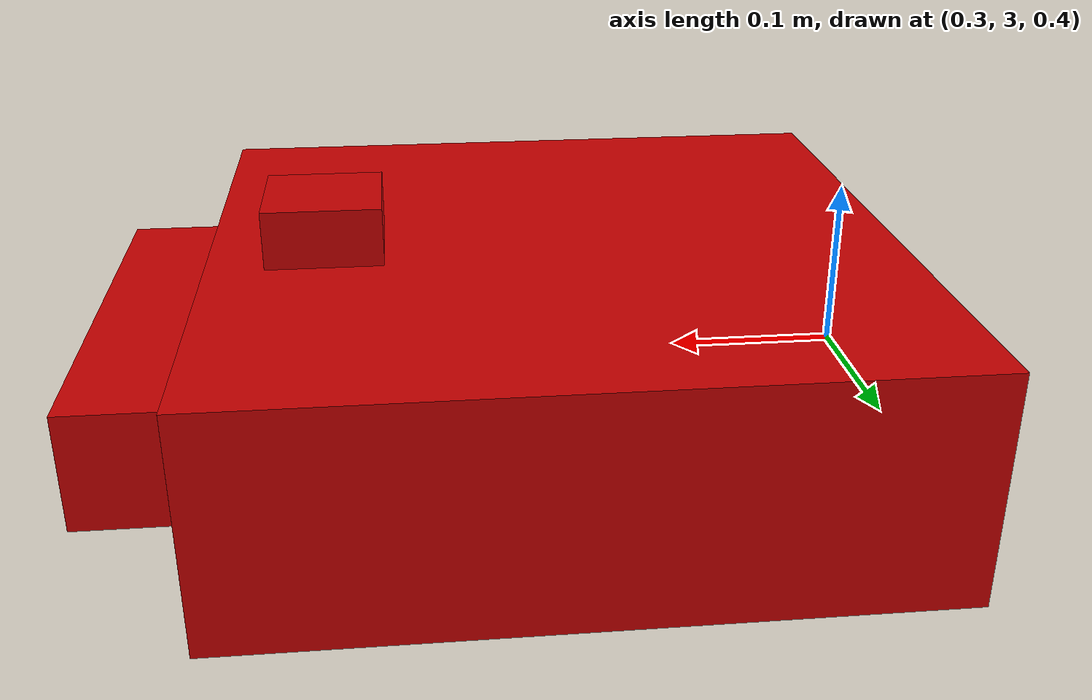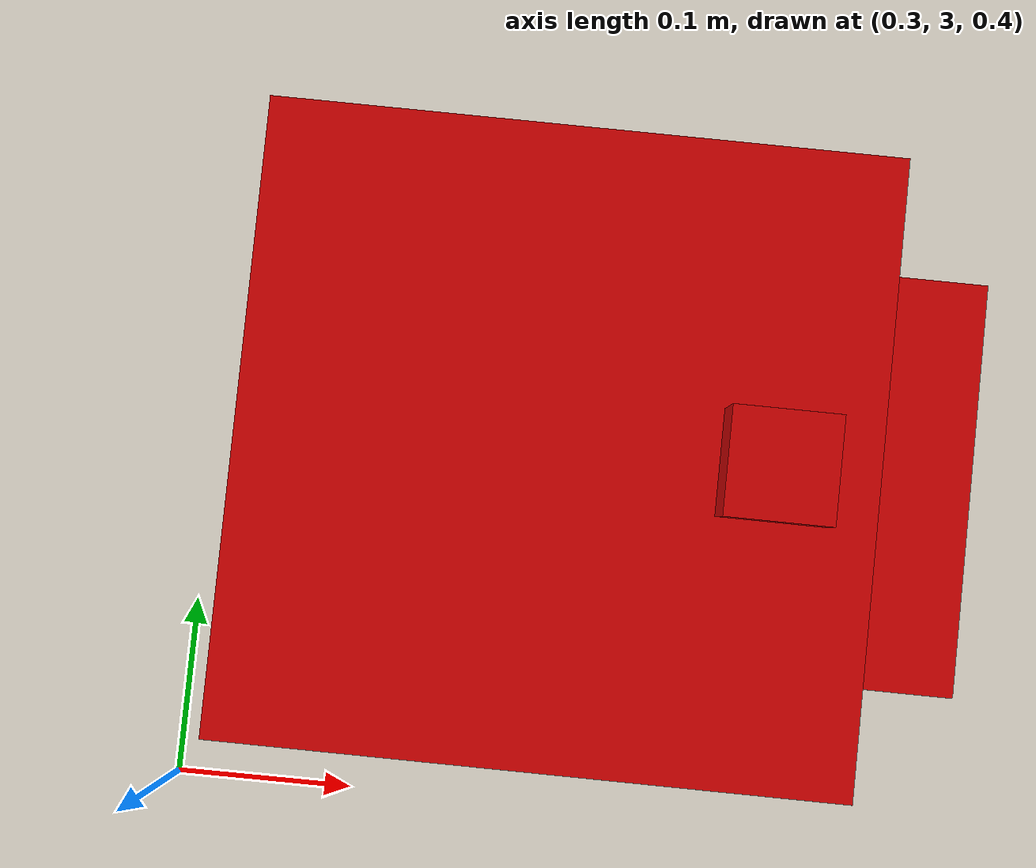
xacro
<?xml version="1.0"?>
<robot name="ros_project" xmlns:xacro="http://www.ros.org/wiki/xacro">
  <xacro:include filename="$(find ros_project_description)/urdf/ros_project.materials.xacro"/>
  <xacro:include filename="$(find ros_project_description)/urdf/ros_project.parameters.xacro"/>
  <xacro:include filename="$(find ros_project_description)/urdf/ros_project.macros.xacro"/>
  <xacro:include filename="$(find ros_project_description)/urdf/ros_project.camera.xacro"/>
  <xacro:include filename="$(find ros_project_description)/urdf/ros_project.control.xacro"/>
  <link name="the_world"/>

  <xacro:create_chassis chassis_id = "main" parent_name = "the_world" radius="$(arg chassis_radius)" xyz="0.5 3.2 0.5"/>
  <xacro:create_chassis_head parent_name = "chassis_main" radius="$(arg chassis_radius)" xyz="0.1 0 0"/>

  <xacro:create_wheel wheel_id = "left" parent_name = "chassis_main" radius="$(arg wheel_radius)" xyz="0 0.15 -0.041"/>
  <xacro:create_wheel wheel_id = "right" parent_name = "chassis_main" radius="$(arg wheel_radius)" xyz="0 -0.15 -0.041"/>

  <xacro:create_nub nub_id = "back" parent_name = "chassis_main" radius="$(arg nub_radius)" xyz="-0.15 0 -0.04"/>
  <xacro:create_nub nub_id = "front" parent_name = "chassis_main" radius="$(arg nub_radius)" xyz="0.15 0 -0.04"/>

  <link name="camera_link">
    <collision>
      <geometry>
        <box size="0.05 0.05 0.05"/>
      </geometry>
    </collision>

    <visual>
      <geometry>
        <box size="0.05 0.05 0.05"/>
      </geometry>
      <material name="red"/>
    </visual>

    <inertial>
      <mass value="1e-5" />
      <inertia ixx="1e-6" ixy="0" ixz="0" iyy="1e-6" iyz="0" izz="1e-6" />
    </inertial>
  </link>

   <joint name="camera_joint" type="fixed">
    <axis xyz="0 0 0" />
    <origin xyz="0 0 0.05" rpy="0 0 0"/>
    <parent link="chassis_head"/>
    <child link="camera_link"/>
  </joint>

</robot>

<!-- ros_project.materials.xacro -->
<robot name="ros_project" xmlns:xacro="http://www.ros.org/wiki/xacro">
  <material name="red">
    <color rgba="0.8 0 0 1"/>
  </material>

  <material name="black">
    <color rgba="0 0 0 1"/>
  </material>

  <material name="green">
    <color rgba="0 1 0 1"/>
  </material>

  <material name="transparent_black">
    <color rgba="0 0 0 0.5"/>
  </material>
</robot>

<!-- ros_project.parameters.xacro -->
<robot name="ros_project" xmlns:xacro="http://www.ros.org/wiki/xacro">
  <xacro:arg name="chassis_radius" default="0"/>
  <xacro:arg name="chassis_height" default="0"/>
  <xacro:arg name="wheel_radius" default="0"/>
  <xacro:arg name="nub_radius" default="0"/>
  <xacro:arg name="world_offset" default="1"/>

  <xacro:property name="chassis_density" value="500"/>
  <xacro:property name="chassis_radius" value="$(arg chassis_radius)"/>
  <xacro:property name="chassis_height" value="$(arg chassis_height)"/>
  <xacro:property name="wheel_radius" value="$(arg wheel_radius)"/>
  <xacro:property name="nub_radius" value="$(arg nub_radius)"/>
  <xacro:property name="chassis_mass" value="${chassis_density * pi * chassis_radius**2 * chassis_height}"/>
</robot>

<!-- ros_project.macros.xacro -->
<robot xmlns:xacro="http://www.ros.org/wiki/xacro" name="ros_project">
   <xacro:macro name="cylinder_inertia" params="mass radius length">
      <inertial>
         <mass value="${mass}"/>
         <inertia
         ixx="${(1/12)*mass*(3*radius**2 + length**2)}"
         ixy="0.0"
         ixz="0.0"
         iyy="${(1/12)*mass*(3*radius**2 + length**2)}"
         iyz="0.0"
         izz="${(1/12)*mass*radius**2}" />
      </inertial>
   </xacro:macro>

      <xacro:macro name="sphere_inertia" params="mass radius">
      <inertial>
         <mass value="${mass}"/>
         <inertia ixx="${(2/5)*mass*radius*radius}"
         ixy="0.0"
         ixz="0.0"
         iyy="${(2/5)*mass*radius*radius}"
         iyz="0.0"
         izz="${(2/5)*mass*radius*radius}"/>
      </inertial>
   </xacro:macro>
   <xacro:macro name="create_wheel" params="radius parent_name wheel_id xyz">
      <link name="wheel_${wheel_id}">
         <visual>
            <geometry>
               <cylinder length="0.05" radius="${radius}" />
            </geometry>
            <material name="black" />
         </visual>
         <collision>
            <geometry>
               <cylinder length="0.05" radius="${radius}" />
            </geometry>
         </collision>
      <inertial>
         <mass value="1" />
         <inertia ixx="1.0" ixy="0.0" ixz="0.0" iyy="1.0" iyz="0.0" izz="0.0" />
      </inertial>
      </link>
      <joint name="base_to_wheel_${wheel_id}" type="continuous">
         <parent link="${parent_name}" />
         <child link="wheel_${wheel_id}" />
         <origin rpy="1.57075 0 0" xyz="${xyz}" />
         <axis xyz="0 0 1" />
      </joint>

   </xacro:macro>
   <xacro:macro name="create_nub" params="radius parent_name nub_id xyz">
      <link name="nub_${nub_id}">
         <visual>
            <geometry>
               <sphere radius="${radius}" />
            </geometry>
            <material name="green" />
         </visual>
         <collision>
            <geometry>
               <sphere radius="${radius}" />
            </geometry>
         </collision>
         <xacro:sphere_inertia mass="1" radius="${radius}"/>
      </link>
      <joint name="base_to_nub_${nub_id}" type="fixed">
         <parent link="${parent_name}" />
         <child link="nub_${nub_id}" />
         <origin xyz="${xyz}" />
      </joint>
   </xacro:macro>
   <xacro:macro name="create_chassis" params="radius parent_name chassis_id xyz">
      <link name="chassis_${chassis_id}">
         <visual>
            <geometry>
               <box size="0.3 0.3 0.1"/>
            </geometry>
            <material name="red" />
         </visual>
         <collision>
            <geometry>
               <box size="0.3 0.3 0.1"/>
            </geometry>
            <origin rpy="0 0 0"/>
         </collision>

         <xacro:cylinder_inertia mass="${chassis_mass}" radius="${radius*3}" length="0.1"/>
      </link>
      <joint name="world_to_chassis_${chassis_id}" type="fixed">
         <parent link="${parent_name}" />
         <child link="chassis_${chassis_id}" />
         <origin xyz="${xyz}" />
      </joint>
   </xacro:macro>

   <xacro:macro name="create_chassis_head" params="radius parent_name xyz">
      <link name="chassis_head">
         <visual>
            <geometry>
               <box size="0.2 0.2 0.05"/>
            </geometry>
            <material name="red" />
         </visual>
         <collision>
            <geometry>
               <box size="0.2 0.2 0.05"/>
            </geometry>
            <origin rpy="0 0 0"/>
         </collision>

         <xacro:cylinder_inertia mass="${chassis_mass}" radius="${radius*3}" length="0.1"/>
      </link>
      <joint name="chassis_to_chassis_head" type="fixed">
         <parent link="${parent_name}" />
         <child link="chassis_head" />
         <origin xyz="${xyz}" />
      </joint>
   </xacro:macro>
</robot>
